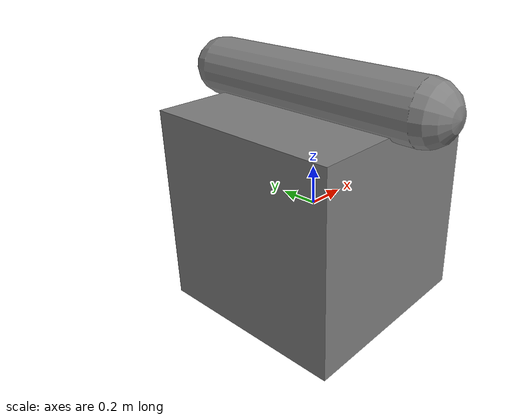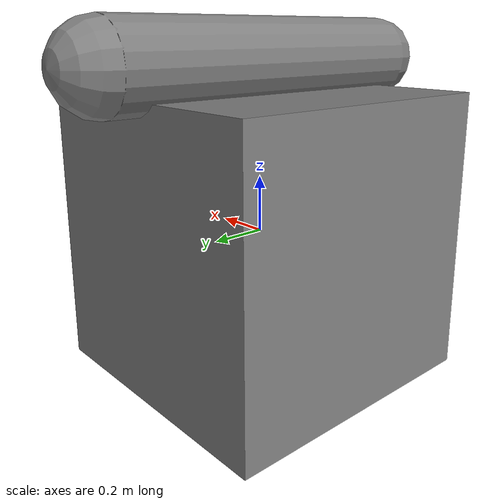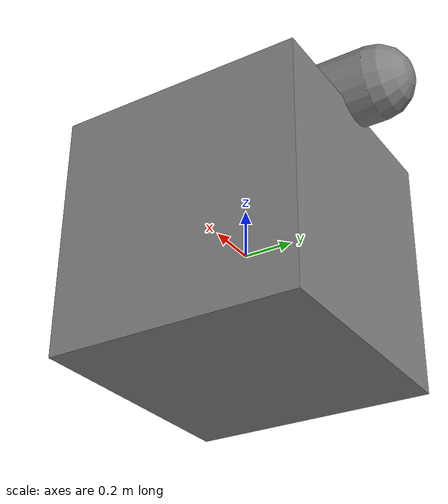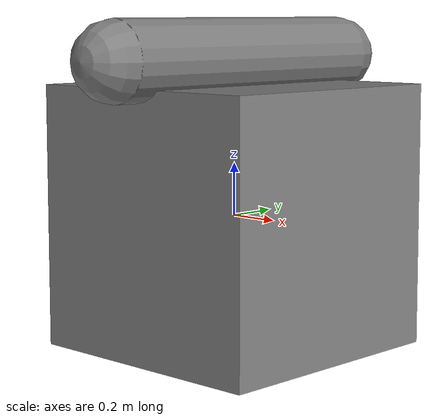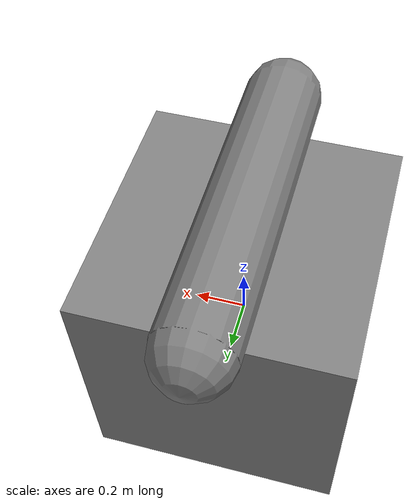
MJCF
<mujoco model="cap_box_tcross">
            <option gravity="0 0 0" timestep="0.001"/>
            <worldbody>
                <body name="box" pos="0 0 0">
                    <joint type="free"/>
                    <geom type="box" size="0.5 0.5 0.5"/>
                </body>
                <body name="cap" pos="0 0 0.6" euler="90 0 0">
                    <joint type="free"/>
                    <geom type="capsule" size="0.15 0.6"/>
                </body>
            </worldbody>
        </mujoco>
